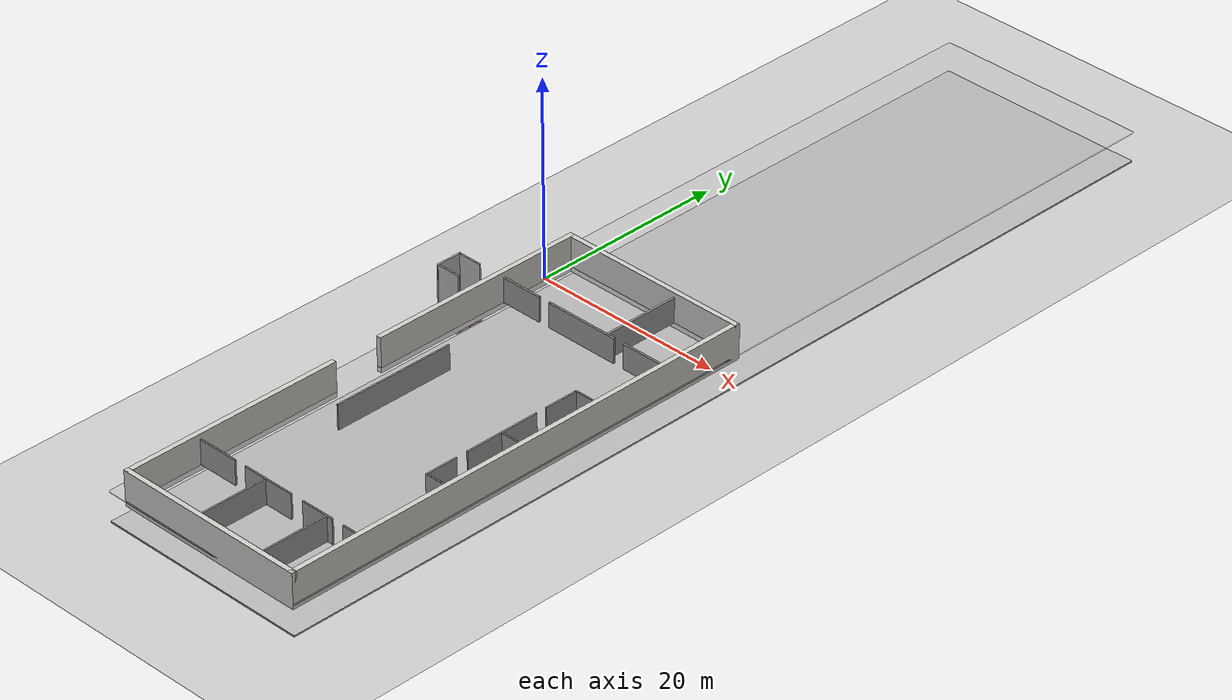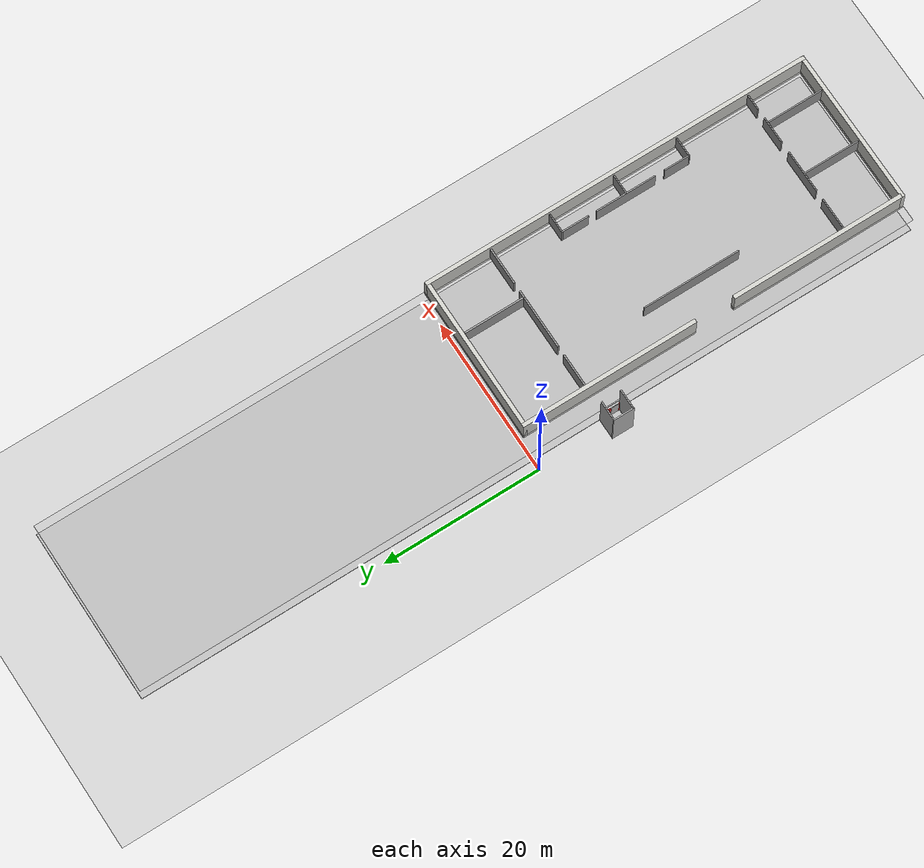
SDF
<sdf version="1.6">
 <world name="default">
  <model name="ground_plane">
   <static>1</static>
   <link name="link">
    <collision name="collision">
     <geometry><plane><normal>0 0 1</normal><size>100 100</size></plane></geometry>
     <surface><friction><ode><mu>100</mu><mu2>50</mu2></ode></friction></surface>
    </collision>
    <visual name="visual">
     <cast_shadows>0</cast_shadows>
     <geometry><plane><normal>0 0 1</normal><size>100 100</size></plane></geometry>
     <material>
      <script><uri>file://media/materials/scripts/gazebo.material</uri><name>Gazebo/Grey</name></script>
     </material>
    </visual>
   </link>
  </model>
  <model name="office_clone_clone">
   <link name="Wall_1">
    <pose>-24.75 -3e-06 0 0 0 -1.5708</pose>
    <inertial>
     <mass>1</mass>
     <inertia><ixx>1</ixx><ixy>0</ixy><ixz>0</ixz><iyy>1</iyy><iyz>0</iyz><izz>1</izz></inertia>
    </inertial>
    <visual name="Wall_1_Visual">
     <pose>0 0 1.25 0 -0 0</pose>
     <geometry><box><size>20 0.5 3.5</size></box></geometry>
     <material>
      <script><uri>file://media/materials/scripts/gazebo.material</uri><name>Gazebo/CeilingTiled</name></script>
      <ambient>1 1 1 1</ambient>
      <shader type="vertex"><normal_map>__default__</normal_map></shader>
      <diffuse>1 1 1 1</diffuse>
      <specular>0 0 0 1</specular>
      <emissive>0 0 0 1</emissive>
     </material>
     <meta><layer>0</layer></meta>
    </visual>
    <collision name="Wall_1_Collision">
     <pose>0 0 1.25 0 -0 0</pose>
     <geometry><box><size>20 0.5 3.5</size></box></geometry>
     <surface>
      <friction>
       <ode><mu>1</mu><mu2>1</mu2><fdir1>0 0 0</fdir1><slip1>0</slip1><slip2>0</slip2></ode>
       <torsional>
        <coefficient>1</coefficient>
        <patch_radius>0</patch_radius>
        <surface_radius>0</surface_radius>
        <use_patch_radius>1</use_patch_radius>
        <ode><slip>0</slip></ode>
       </torsional>
      </friction>
      <bounce><restitution_coefficient>0</restitution_coefficient><threshold>1e+06</threshold></bounce>
      <contact>
       <collide_without_contact>0</collide_without_contact>
       <collide_without_contact_bitmask>1</collide_without_contact_bitmask>
       <collide_bitmask>1</collide_bitmask>
       <ode>
        <soft_cfm>0</soft_cfm>
        <soft_erp>0.2</soft_erp>
        <kp>1e+13</kp>
        <kd>1</kd>
        <max_vel>0.01</max_vel>
        <min_depth>0</min_depth>
       </ode>
       <bullet>
        <split_impulse>1</split_impulse>
        <split_impulse_penetration_threshold>-0.01</split_impulse_penetration_threshold>
        <soft_cfm>0</soft_cfm>
        <soft_erp>0.2</soft_erp>
        <kp>1e+13</kp>
        <kd>1</kd>
       </bullet>
      </contact>
     </surface>
    </collision>
   </link>
   <link name="Wall_11">
    <pose>24.75 3e-06 0 0 0 -1.5708</pose>
    <inertial>
     <mass>1</mass>
     <inertia><ixx>1</ixx><ixy>0</ixy><ixz>0</ixz><iyy>1</iyy><iyz>0</iyz><izz>1</izz></inertia>
    </inertial>
    <visual name="Wall_11_Visual">
     <pose>0 0 1.25 0 -0 0</pose>
     <geometry><box><size>20 0.5 3.5</size></box></geometry>
     <material>
      <script><uri>file://media/materials/scripts/gazebo.material</uri><name>Gazebo/CeilingTiled</name></script>
      <ambient>1 1 1 1</ambient>
      <shader type="vertex"><normal_map>__default__</normal_map></shader>
      <diffuse>1 1 1 1</diffuse>
      <specular>0 0 0 1</specular>
      <emissive>0 0 0 1</emissive>
     </material>
     <meta><layer>0</layer></meta>
    </visual>
    <collision name="Wall_11_Collision">
     <pose>0 0 1.25 0 -0 0</pose>
     <geometry><box><size>20 0.5 3.5</size></box></geometry>
     <surface>
      <friction>
       <ode><mu>1</mu><mu2>1</mu2><fdir1>0 0 0</fdir1><slip1>0</slip1><slip2>0</slip2></ode>
       <torsional>
        <coefficient>1</coefficient>
        <patch_radius>0</patch_radius>
        <surface_radius>0</surface_radius>
        <use_patch_radius>1</use_patch_radius>
        <ode><slip>0</slip></ode>
       </torsional>
      </friction>
      <bounce><restitution_coefficient>0</restitution_coefficient><threshold>1e+06</threshold></bounce>
      <contact>
       <collide_without_contact>0</collide_without_contact>
       <collide_without_contact_bitmask>1</collide_without_contact_bitmask>
       <collide_bitmask>1</collide_bitmask>
       <ode>
        <soft_cfm>0</soft_cfm>
        <soft_erp>0.2</soft_erp>
        <kp>1e+13</kp>
        <kd>1</kd>
        <max_vel>0.01</max_vel>
        <min_depth>0</min_depth>
       </ode>
       <bullet>
        <split_impulse>1</split_impulse>
        <split_impulse_penetration_threshold>-0.01</split_impulse_penetration_threshold>
        <soft_cfm>0</soft_cfm>
        <soft_erp>0.2</soft_erp>
        <kp>1e+13</kp>
        <kd>1</kd>
       </bullet>
      </contact>
     </surface>
    </collision>
   </link>
   <link name="Wall_13">
    <pose>-16.658 7.127 0 0 0 -1.5708</pose>
    <visual name="Wall_13_Visual">
     <pose>0 0 1.25 0 -0 0</pose>
     <geometry><box><size>4.80017 0.2 2.5</size></box></geometry>
     <material>
      <script><uri>file://media/materials/scripts/gazebo.material</uri><name>Gazebo/Grey</name></script>
      <ambient>1 1 1 1</ambient>
     </material>
     <meta><layer>0</layer></meta>
    </visual>
    <collision name="Wall_13_Collision">
     <pose>0 0 1.25 0 -0 0</pose>
     <geometry><box><size>4.80017 0.2 2.5</size></box></geometry>
     <surface>
      <friction>
       <ode><mu>1</mu><mu2>1</mu2><fdir1>0 0 0</fdir1><slip1>0</slip1><slip2>0</slip2></ode>
       <torsional>
        <coefficient>1</coefficient>
        <patch_radius>0</patch_radius>
        <surface_radius>0</surface_radius>
        <use_patch_radius>1</use_patch_radius>
        <ode><slip>0</slip></ode>
       </torsional>
      </friction>
      <bounce><restitution_coefficient>0</restitution_coefficient><threshold>1e+06</threshold></bounce>
      <contact>
       <collide_without_contact>0</collide_without_contact>
       <collide_without_contact_bitmask>1</collide_without_contact_bitmask>
       <collide_bitmask>1</collide_bitmask>
       <ode>
        <soft_cfm>0</soft_cfm>
        <soft_erp>0.2</soft_erp>
        <kp>1e+13</kp>
        <kd>1</kd>
        <max_vel>0.01</max_vel>
        <min_depth>0</min_depth>
       </ode>
       <bullet>
        <split_impulse>1</split_impulse>
        <split_impulse_penetration_threshold>-0.01</split_impulse_penetration_threshold>
        <soft_cfm>0</soft_cfm>
        <soft_erp>0.2</soft_erp>
        <kp>1e+13</kp>
        <kd>1</kd>
       </bullet>
      </contact>
     </surface>
    </collision>
   </link>
   <link name="Wall_15">
    <pose>-16.658 -0.198 0 0 0 -1.5708</pose>
    <visual name="Wall_15_Visual">
     <pose>0 0 1.25 0 -0 0</pose>
     <geometry><box><size>7.75 0.2 2.5</size></box></geometry>
     <material>
      <script><uri>file://media/materials/scripts/gazebo.material</uri><name>Gazebo/Grey</name></script>
      <ambient>1 1 1 1</ambient>
     </material>
     <meta><layer>0</layer></meta>
    </visual>
    <collision name="Wall_15_Collision">
     <pose>0 0 1.25 0 -0 0</pose>
     <geometry><box><size>7.75 0.2 2.5</size></box></geometry>
     <surface>
      <friction>
       <ode><mu>1</mu><mu2>1</mu2><fdir1>0 0 0</fdir1><slip1>0</slip1><slip2>0</slip2></ode>
       <torsional>
        <coefficient>1</coefficient>
        <patch_radius>0</patch_radius>
        <surface_radius>0</surface_radius>
        <use_patch_radius>1</use_patch_radius>
        <ode><slip>0</slip></ode>
       </torsional>
      </friction>
      <bounce><restitution_coefficient>0</restitution_coefficient><threshold>1e+06</threshold></bounce>
      <contact>
       <collide_without_contact>0</collide_without_contact>
       <collide_without_contact_bitmask>1</collide_without_contact_bitmask>
       <collide_bitmask>1</collide_bitmask>
       <ode>
        <soft_cfm>0</soft_cfm>
        <soft_erp>0.2</soft_erp>
        <kp>1e+13</kp>
        <kd>1</kd>
        <max_vel>0.01</max_vel>
        <min_depth>0</min_depth>
       </ode>
       <bullet>
        <split_impulse>1</split_impulse>
        <split_impulse_penetration_threshold>-0.01</split_impulse_penetration_threshold>
        <soft_cfm>0</soft_cfm>
        <soft_erp>0.2</soft_erp>
        <kp>1e+13</kp>
        <kd>1</kd>
       </bullet>
      </contact>
     </surface>
    </collision>
   </link>
   <link name="Wall_17">
    <pose>-16.658 -7.423 0 0 0 -1.5708</pose>
    <visual name="Wall_17_Visual">
     <pose>0 0 1.25 0 -0 0</pose>
     <geometry><box><size>4.5 0.2 2.5</size></box></geometry>
     <material>
      <script><uri>file://media/materials/scripts/gazebo.material</uri><name>Gazebo/Grey</name></script>
      <ambient>1 1 1 1</ambient>
     </material>
     <meta><layer>0</layer></meta>
    </visual>
    <collision name="Wall_17_Collision">
     <pose>0 0 1.25 0 -0 0</pose>
     <geometry><box><size>4.5 0.2 2.5</size></box></geometry>
     <surface>
      <friction>
       <ode><mu>1</mu><mu2>1</mu2><fdir1>0 0 0</fdir1><slip1>0</slip1><slip2>0</slip2></ode>
       <torsional>
        <coefficient>1</coefficient>
        <patch_radius>0</patch_radius>
        <surface_radius>0</surface_radius>
        <use_patch_radius>1</use_patch_radius>
        <ode><slip>0</slip></ode>
       </torsional>
      </friction>
      <bounce><restitution_coefficient>0</restitution_coefficient><threshold>1e+06</threshold></bounce>
      <contact>
       <collide_without_contact>0</collide_without_contact>
       <collide_without_contact_bitmask>1</collide_without_contact_bitmask>
       <collide_bitmask>1</collide_bitmask>
       <ode>
        <soft_cfm>0</soft_cfm>
        <soft_erp>0.2</soft_erp>
        <kp>1e+13</kp>
        <kd>1</kd>
        <max_vel>0.01</max_vel>
        <min_depth>0</min_depth>
       </ode>
       <bullet>
        <split_impulse>1</split_impulse>
        <split_impulse_penetration_threshold>-0.01</split_impulse_penetration_threshold>
        <soft_cfm>0</soft_cfm>
        <soft_erp>0.2</soft_erp>
        <kp>1e+13</kp>
        <kd>1</kd>
       </bullet>
      </contact>
     </surface>
    </collision>
   </link>
   <link name="Wall_19">
    <pose>-20.703 2.792 0 0 -0 0</pose>
    <visual name="Wall_19_Visual">
     <pose>0 0 1.25 0 -0 0</pose>
     <geometry><box><size>8.04985 0.2 2.5</size></box></geometry>
     <material>
      <script><uri>file://media/materials/scripts/gazebo.material</uri><name>Gazebo/Grey</name></script>
      <ambient>1 1 1 1</ambient>
     </material>
     <meta><layer>0</layer></meta>
    </visual>
    <collision name="Wall_19_Collision">
     <pose>0 0 1.25 0 -0 0</pose>
     <geometry><box><size>8.04985 0.2 2.5</size></box></geometry>
     <surface>
      <friction>
       <ode><mu>1</mu><mu2>1</mu2><fdir1>0 0 0</fdir1><slip1>0</slip1><slip2>0</slip2></ode>
       <torsional>
        <coefficient>1</coefficient>
        <patch_radius>0</patch_radius>
        <surface_radius>0</surface_radius>
        <use_patch_radius>1</use_patch_radius>
        <ode><slip>0</slip></ode>
       </torsional>
      </friction>
      <bounce><restitution_coefficient>0</restitution_coefficient><threshold>1e+06</threshold></bounce>
      <contact>
       <collide_without_contact>0</collide_without_contact>
       <collide_without_contact_bitmask>1</collide_without_contact_bitmask>
       <collide_bitmask>1</collide_bitmask>
       <ode>
        <soft_cfm>0</soft_cfm>
        <soft_erp>0.2</soft_erp>
        <kp>1e+13</kp>
        <kd>1</kd>
        <max_vel>0.01</max_vel>
        <min_depth>0</min_depth>
       </ode>
       <bullet>
        <split_impulse>1</split_impulse>
        <split_impulse_penetration_threshold>-0.01</split_impulse_penetration_threshold>
        <soft_cfm>0</soft_cfm>
        <soft_erp>0.2</soft_erp>
        <kp>1e+13</kp>
        <kd>1</kd>
       </bullet>
      </contact>
     </surface>
    </collision>
   </link>
   <link name="Wall_21">
    <pose>17.2839 8.57905 0 0 0 -1.57072</pose>
    <visual name="Wall_21_Visual">
     <pose>0 0 1.25 0 -0 0</pose>
     <geometry><box><size>2.25 0.15 2.5</size></box></geometry>
     <material>
      <script><uri>file://media/materials/scripts/gazebo.material</uri><name>Gazebo/Grey</name></script>
      <ambient>1 1 1 1</ambient>
     </material>
     <meta><layer>0</layer></meta>
    </visual>
    <collision name="Wall_21_Collision">
     <pose>0 0 1.25 0 -0 0</pose>
     <geometry><box><size>2.25 0.15 2.5</size></box></geometry>
     <surface>
      <friction>
       <ode><mu>1</mu><mu2>1</mu2><fdir1>0 0 0</fdir1><slip1>0</slip1><slip2>0</slip2></ode>
       <torsional>
        <coefficient>1</coefficient>
        <patch_radius>0</patch_radius>
        <surface_radius>0</surface_radius>
        <use_patch_radius>1</use_patch_radius>
        <ode><slip>0</slip></ode>
       </torsional>
      </friction>
      <bounce><restitution_coefficient>0</restitution_coefficient><threshold>1e+06</threshold></bounce>
      <contact>
       <collide_without_contact>0</collide_without_contact>
       <collide_without_contact_bitmask>1</collide_without_contact_bitmask>
       <collide_bitmask>1</collide_bitmask>
       <ode>
        <soft_cfm>0</soft_cfm>
        <soft_erp>0.2</soft_erp>
        <kp>1e+13</kp>
        <kd>1</kd>
        <max_vel>0.01</max_vel>
        <min_depth>0</min_depth>
       </ode>
       <bullet>
        <split_impulse>1</split_impulse>
        <split_impulse_penetration_threshold>-0.01</split_impulse_penetration_threshold>
        <soft_cfm>0</soft_cfm>
        <soft_erp>0.2</soft_erp>
        <kp>1e+13</kp>
        <kd>1</kd>
       </bullet>
      </contact>
     </surface>
    </collision>
   </link>
   <link name="Wall_23">
    <pose>17.2838 4.5041 0 0 0 -1.5708</pose>
    <visual name="Wall_23_Visual">
     <pose>0 0 1.25 0 -0 0</pose>
     <geometry><box><size>3.5 0.15 2.5</size></box></geometry>
     <material>
      <script><uri>file://media/materials/scripts/gazebo.material</uri><name>Gazebo/Grey</name></script>
      <ambient>1 1 1 1</ambient>
     </material>
     <meta><layer>0</layer></meta>
    </visual>
    <collision name="Wall_23_Collision">
     <pose>0 0 1.25 0 -0 0</pose>
     <geometry><box><size>3.5 0.15 2.5</size></box></geometry>
     <surface>
      <friction>
       <ode><mu>1</mu><mu2>1</mu2><fdir1>0 0 0</fdir1><slip1>0</slip1><slip2>0</slip2></ode>
       <torsional>
        <coefficient>1</coefficient>
        <patch_radius>0</patch_radius>
        <surface_radius>0</surface_radius>
        <use_patch_radius>1</use_patch_radius>
        <ode><slip>0</slip></ode>
       </torsional>
      </friction>
      <bounce><restitution_coefficient>0</restitution_coefficient><threshold>1e+06</threshold></bounce>
      <contact>
       <collide_without_contact>0</collide_without_contact>
       <collide_without_contact_bitmask>1</collide_without_contact_bitmask>
       <collide_bitmask>1</collide_bitmask>
       <ode>
        <soft_cfm>0</soft_cfm>
        <soft_erp>0.2</soft_erp>
        <kp>1e+13</kp>
        <kd>1</kd>
        <max_vel>0.01</max_vel>
        <min_depth>0</min_depth>
       </ode>
       <bullet>
        <split_impulse>1</split_impulse>
        <split_impulse_penetration_threshold>-0.01</split_impulse_penetration_threshold>
        <soft_cfm>0</soft_cfm>
        <soft_erp>0.2</soft_erp>
        <kp>1e+13</kp>
        <kd>1</kd>
       </bullet>
      </contact>
     </surface>
    </collision>
   </link>
   <link name="Wall_25">
    <pose>17.2838 -1.3459 0 0 0 -1.5708</pose>
    <visual name="Wall_25_Visual">
     <pose>0 0 1.25 0 -0 0</pose>
     <geometry><box><size>5.5 0.15 2.5</size></box></geometry>
     <material>
      <script><uri>file://media/materials/scripts/gazebo.material</uri><name>Gazebo/Grey</name></script>
      <ambient>1 1 1 1</ambient>
     </material>
     <meta><layer>0</layer></meta>
    </visual>
    <collision name="Wall_25_Collision">
     <pose>0 0 1.25 0 -0 0</pose>
     <geometry><box><size>5.5 0.15 2.5</size></box></geometry>
     <surface>
      <friction>
       <ode><mu>1</mu><mu2>1</mu2><fdir1>0 0 0</fdir1><slip1>0</slip1><slip2>0</slip2></ode>
       <torsional>
        <coefficient>1</coefficient>
        <patch_radius>0</patch_radius>
        <surface_radius>0</surface_radius>
        <use_patch_radius>1</use_patch_radius>
        <ode><slip>0</slip></ode>
       </torsional>
      </friction>
      <bounce><restitution_coefficient>0</restitution_coefficient><threshold>1e+06</threshold></bounce>
      <contact>
       <collide_without_contact>0</collide_without_contact>
       <collide_without_contact_bitmask>1</collide_without_contact_bitmask>
       <collide_bitmask>1</collide_bitmask>
       <ode>
        <soft_cfm>0</soft_cfm>
        <soft_erp>0.2</soft_erp>
        <kp>1e+13</kp>
        <kd>1</kd>
        <max_vel>0.01</max_vel>
        <min_depth>0</min_depth>
       </ode>
       <bullet>
        <split_impulse>1</split_impulse>
        <split_impulse_penetration_threshold>-0.01</split_impulse_penetration_threshold>
        <soft_cfm>0</soft_cfm>
        <soft_erp>0.2</soft_erp>
        <kp>1e+13</kp>
        <kd>1</kd>
       </bullet>
      </contact>
     </surface>
    </collision>
   </link>
   <link name="Wall_27">
    <pose>17.2838 -7.4709 0 0 0 -1.5708</pose>
    <visual name="Wall_27_Visual">
     <pose>0 0 1.25 0 -0 0</pose>
     <geometry><box><size>4.35 0.15 2.5</size></box></geometry>
     <material>
      <script><uri>file://media/materials/scripts/gazebo.material</uri><name>Gazebo/Grey</name></script>
      <ambient>1 1 1 1</ambient>
     </material>
     <meta><layer>0</layer></meta>
    </visual>
    <collision name="Wall_27_Collision">
     <pose>0 0 1.25 0 -0 0</pose>
     <geometry><box><size>4.35 0.15 2.5</size></box></geometry>
     <surface>
      <friction>
       <ode><mu>1</mu><mu2>1</mu2><fdir1>0 0 0</fdir1><slip1>0</slip1><slip2>0</slip2></ode>
       <torsional>
        <coefficient>1</coefficient>
        <patch_radius>0</patch_radius>
        <surface_radius>0</surface_radius>
        <use_patch_radius>1</use_patch_radius>
        <ode><slip>0</slip></ode>
       </torsional>
      </friction>
      <bounce><restitution_coefficient>0</restitution_coefficient><threshold>1e+06</threshold></bounce>
      <contact>
       <collide_without_contact>0</collide_without_contact>
       <collide_without_contact_bitmask>1</collide_without_contact_bitmask>
       <collide_bitmask>1</collide_bitmask>
       <ode>
        <soft_cfm>0</soft_cfm>
        <soft_erp>0.2</soft_erp>
        <kp>1e+13</kp>
        <kd>1</kd>
        <max_vel>0.01</max_vel>
        <min_depth>0</min_depth>
       </ode>
       <bullet>
        <split_impulse>1</split_impulse>
        <split_impulse_penetration_threshold>-0.01</split_impulse_penetration_threshold>
        <soft_cfm>0</soft_cfm>
        <soft_erp>0.2</soft_erp>
        <kp>1e+13</kp>
        <kd>1</kd>
       </bullet>
      </contact>
     </surface>
    </collision>
   </link>
   <link name="Wall_29">
    <pose>20.9993 5.58355 0 0 -0 0</pose>
    <visual name="Wall_29_Visual">
     <pose>0 0 1.25 0 -0 0</pose>
     <geometry><box><size>7.5 0.15 2.5</size></box></geometry>
     <material>
      <script><uri>file://media/materials/scripts/gazebo.material</uri><name>Gazebo/Grey</name></script>
      <ambient>1 1 1 1</ambient>
     </material>
     <meta><layer>0</layer></meta>
    </visual>
    <collision name="Wall_29_Collision">
     <pose>0 0 1.25 0 -0 0</pose>
     <geometry><box><size>7.5 0.15 2.5</size></box></geometry>
     <surface>
      <friction>
       <ode><mu>1</mu><mu2>1</mu2><fdir1>0 0 0</fdir1><slip1>0</slip1><slip2>0</slip2></ode>
       <torsional>
        <coefficient>1</coefficient>
        <patch_radius>0</patch_radius>
        <surface_radius>0</surface_radius>
        <use_patch_radius>1</use_patch_radius>
        <ode><slip>0</slip></ode>
       </torsional>
      </friction>
      <bounce><restitution_coefficient>0</restitution_coefficient><threshold>1e+06</threshold></bounce>
      <contact>
       <collide_without_contact>0</collide_without_contact>
       <collide_without_contact_bitmask>1</collide_without_contact_bitmask>
       <collide_bitmask>1</collide_bitmask>
       <ode>
        <soft_cfm>0</soft_cfm>
        <soft_erp>0.2</soft_erp>
        <kp>1e+13</kp>
        <kd>1</kd>
        <max_vel>0.01</max_vel>
        <min_depth>0</min_depth>
       </ode>
       <bullet>
        <split_impulse>1</split_impulse>
        <split_impulse_penetration_threshold>-0.01</split_impulse_penetration_threshold>
        <soft_cfm>0</soft_cfm>
        <soft_erp>0.2</soft_erp>
        <kp>1e+13</kp>
        <kd>1</kd>
       </bullet>
      </contact>
     </surface>
    </collision>
   </link>
   <link name="Wall_3">
    <pose>-1e-06 9.75 0 0 -0 0</pose>
    <inertial>
     <mass>1</mass>
     <inertia><ixx>1</ixx><ixy>0</ixy><ixz>0</ixz><iyy>1</iyy><iyz>0</iyz><izz>1</izz></inertia>
    </inertial>
    <visual name="Wall_3_Visual">
     <pose>0 0 1.25 0 -0 0</pose>
     <geometry><box><size>50 0.5 3.5</size></box></geometry>
     <material>
      <script><uri>file://media/materials/scripts/gazebo.material</uri><name>Gazebo/CeilingTiled</name></script>
      <ambient>1 1 1 1</ambient>
      <shader type="vertex"><normal_map>__default__</normal_map></shader>
      <diffuse>1 1 1 1</diffuse>
      <specular>0 0 0 1</specular>
      <emissive>0 0 0 1</emissive>
     </material>
     <meta><layer>0</layer></meta>
    </visual>
    <collision name="Wall_3_Collision">
     <pose>0 0 1.25 0 -0 0</pose>
     <geometry><box><size>50 0.5 3.5</size></box></geometry>
     <surface>
      <friction>
       <ode><mu>1</mu><mu2>1</mu2><fdir1>0 0 0</fdir1><slip1>0</slip1><slip2>0</slip2></ode>
       <torsional>
        <coefficient>1</coefficient>
        <patch_radius>0</patch_radius>
        <surface_radius>0</surface_radius>
        <use_patch_radius>1</use_patch_radius>
        <ode><slip>0</slip></ode>
       </torsional>
      </friction>
      <bounce><restitution_coefficient>0</restitution_coefficient><threshold>1e+06</threshold></bounce>
      <contact>
       <collide_without_contact>0</collide_without_contact>
       <collide_without_contact_bitmask>1</collide_without_contact_bitmask>
       <collide_bitmask>1</collide_bitmask>
       <ode>
        <soft_cfm>0</soft_cfm>
        <soft_erp>0.2</soft_erp>
        <kp>1e+13</kp>
        <kd>1</kd>
        <max_vel>0.01</max_vel>
        <min_depth>0</min_depth>
       </ode>
       <bullet>
        <split_impulse>1</split_impulse>
        <split_impulse_penetration_threshold>-0.01</split_impulse_penetration_threshold>
        <soft_cfm>0</soft_cfm>
        <soft_erp>0.2</soft_erp>
        <kp>1e+13</kp>
        <kd>1</kd>
       </bullet>
      </contact>
     </surface>
    </collision>
   </link>
   <link name="Wall_31">
    <pose>20.9993 -1.658 0 0 -0 0</pose>
    <visual name="Wall_31_Visual">
     <pose>0 0 1.25 0 -0 0</pose>
     <geometry><box><size>7.5 0.15 2.5</size></box></geometry>
     <material>
      <script><uri>file://media/materials/scripts/gazebo.material</uri><name>Gazebo/Grey</name></script>
      <ambient>1 1 1 1</ambient>
     </material>
     <meta><layer>0</layer></meta>
    </visual>
    <collision name="Wall_31_Collision">
     <pose>0 0 1.25 0 -0 0</pose>
     <geometry><box><size>7.5 0.15 2.5</size></box></geometry>
     <surface>
      <friction>
       <ode><mu>1</mu><mu2>1</mu2><fdir1>0 0 0</fdir1><slip1>0</slip1><slip2>0</slip2></ode>
       <torsional>
        <coefficient>1</coefficient>
        <patch_radius>0</patch_radius>
        <surface_radius>0</surface_radius>
        <use_patch_radius>1</use_patch_radius>
        <ode><slip>0</slip></ode>
       </torsional>
      </friction>
      <bounce><restitution_coefficient>0</restitution_coefficient><threshold>1e+06</threshold></bounce>
      <contact>
       <collide_without_contact>0</collide_without_contact>
       <collide_without_contact_bitmask>1</collide_without_contact_bitmask>
       <collide_bitmask>1</collide_bitmask>
       <ode>
        <soft_cfm>0</soft_cfm>
        <soft_erp>0.2</soft_erp>
        <kp>1e+13</kp>
        <kd>1</kd>
        <max_vel>0.01</max_vel>
        <min_depth>0</min_depth>
       </ode>
       <bullet>
        <split_impulse>1</split_impulse>
        <split_impulse_penetration_threshold>-0.01</split_impulse_penetration_threshold>
        <soft_cfm>0</soft_cfm>
        <soft_erp>0.2</soft_erp>
        <kp>1e+13</kp>
        <kd>1</kd>
       </bullet>
      </contact>
     </surface>
    </collision>
   </link>
   <link name="Wall_34">
    <pose>-8.97184 8.28865 0 0 0 -1.5708</pose>
    <visual name="Wall_34_Visual">
     <pose>0 0 1.25 0 -0 0</pose>
     <geometry><box><size>2.75032 0.15 2.5</size></box></geometry>
     <material>
      <script><uri>file://media/materials/scripts/gazebo.material</uri><name>Gazebo/Grey</name></script>
      <ambient>1 1 1 1</ambient>
     </material>
     <meta><layer>0</layer></meta>
    </visual>
    <collision name="Wall_34_Collision">
     <pose>0 0 1.25 0 -0 0</pose>
     <geometry><box><size>2.75032 0.15 2.5</size></box></geometry>
     <surface>
      <friction>
       <ode><mu>1</mu><mu2>1</mu2><fdir1>0 0 0</fdir1><slip1>0</slip1><slip2>0</slip2></ode>
       <torsional>
        <coefficient>1</coefficient>
        <patch_radius>0</patch_radius>
        <surface_radius>0</surface_radius>
        <use_patch_radius>1</use_patch_radius>
        <ode><slip>0</slip></ode>
       </torsional>
      </friction>
      <bounce><restitution_coefficient>0</restitution_coefficient><threshold>1e+06</threshold></bounce>
      <contact>
       <collide_without_contact>0</collide_without_contact>
       <collide_without_contact_bitmask>1</collide_without_contact_bitmask>
       <collide_bitmask>1</collide_bitmask>
       <ode>
        <soft_cfm>0</soft_cfm>
        <soft_erp>0.2</soft_erp>
        <kp>1e+13</kp>
        <kd>1</kd>
        <max_vel>0.01</max_vel>
        <min_depth>0</min_depth>
       </ode>
       <bullet>
        <split_impulse>1</split_impulse>
        <split_impulse_penetration_threshold>-0.01</split_impulse_penetration_threshold>
        <soft_cfm>0</soft_cfm>
        <soft_erp>0.2</soft_erp>
        <kp>1e+13</kp>
        <kd>1</kd>
       </bullet>
      </contact>
     </surface>
    </collision>
   </link>
   <link name="Wall_35">
    <pose>-7.25638 6.98865 0 0 -0 0</pose>
    <visual name="Wall_35_Visual">
     <pose>0 0 1.25 0 -0 0</pose>
     <geometry><box><size>3.5 0.15 2.5</size></box></geometry>
     <material>
      <script><uri>file://media/materials/scripts/gazebo.material</uri><name>Gazebo/Grey</name></script>
      <ambient>1 1 1 1</ambient>
     </material>
     <meta><layer>0</layer></meta>
    </visual>
    <collision name="Wall_35_Collision">
     <pose>0 0 1.25 0 -0 0</pose>
     <geometry><box><size>3.5 0.15 2.5</size></box></geometry>
     <surface>
      <friction>
       <ode><mu>1</mu><mu2>1</mu2><fdir1>0 0 0</fdir1><slip1>0</slip1><slip2>0</slip2></ode>
       <torsional>
        <coefficient>1</coefficient>
        <patch_radius>0</patch_radius>
        <surface_radius>0</surface_radius>
        <use_patch_radius>1</use_patch_radius>
        <ode><slip>0</slip></ode>
       </torsional>
      </friction>
      <bounce><restitution_coefficient>0</restitution_coefficient><threshold>1e+06</threshold></bounce>
      <contact>
       <collide_without_contact>0</collide_without_contact>
       <collide_without_contact_bitmask>1</collide_without_contact_bitmask>
       <collide_bitmask>1</collide_bitmask>
       <ode>
        <soft_cfm>0</soft_cfm>
        <soft_erp>0.2</soft_erp>
        <kp>1e+13</kp>
        <kd>1</kd>
        <max_vel>0.01</max_vel>
        <min_depth>0</min_depth>
       </ode>
       <bullet>
        <split_impulse>1</split_impulse>
        <split_impulse_penetration_threshold>-0.01</split_impulse_penetration_threshold>
        <soft_cfm>0</soft_cfm>
        <soft_erp>0.2</soft_erp>
        <kp>1e+13</kp>
        <kd>1</kd>
       </bullet>
      </contact>
     </surface>
    </collision>
   </link>
   <link name="Wall_37">
    <pose>-0.572 6.989 0 0 -0 0</pose>
    <visual name="Wall_37_Visual">
     <pose>0 0 1.25 0 -0 0</pose>
     <geometry><box><size>7.75 0.15 2.5</size></box></geometry>
     <material>
      <script><uri>file://media/materials/scripts/gazebo.material</uri><name>Gazebo/Grey</name></script>
      <ambient>1 1 1 1</ambient>
     </material>
     <meta><layer>0</layer></meta>
    </visual>
    <collision name="Wall_37_Collision">
     <pose>0 0 1.25 0 -0 0</pose>
     <geometry><box><size>7.75 0.15 2.5</size></box></geometry>
     <surface>
      <friction>
       <ode><mu>1</mu><mu2>1</mu2><fdir1>0 0 0</fdir1><slip1>0</slip1><slip2>0</slip2></ode>
       <torsional>
        <coefficient>1</coefficient>
        <patch_radius>0</patch_radius>
        <surface_radius>0</surface_radius>
        <use_patch_radius>1</use_patch_radius>
        <ode><slip>0</slip></ode>
       </torsional>
      </friction>
      <bounce><restitution_coefficient>0</restitution_coefficient><threshold>1e+06</threshold></bounce>
      <contact>
       <collide_without_contact>0</collide_without_contact>
       <collide_without_contact_bitmask>1</collide_without_contact_bitmask>
       <collide_bitmask>1</collide_bitmask>
       <ode>
        <soft_cfm>0</soft_cfm>
        <soft_erp>0.2</soft_erp>
        <kp>1e+13</kp>
        <kd>1</kd>
        <max_vel>0.01</max_vel>
        <min_depth>0</min_depth>
       </ode>
       <bullet>
        <split_impulse>1</split_impulse>
        <split_impulse_penetration_threshold>-0.01</split_impulse_penetration_threshold>
        <soft_cfm>0</soft_cfm>
        <soft_erp>0.2</soft_erp>
        <kp>1e+13</kp>
        <kd>1</kd>
       </bullet>
      </contact>
     </surface>
    </collision>
   </link>
   <link name="Wall_39">
    <pose>6.17808 6.98882 0 0 0 -0.00011</pose>
    <visual name="Wall_39_Visual">
     <pose>0 0 1.25 0 -0 0</pose>
     <geometry><box><size>3.35 0.15 2.5</size></box></geometry>
     <material>
      <script><uri>file://media/materials/scripts/gazebo.material</uri><name>Gazebo/Grey</name></script>
      <ambient>1 1 1 1</ambient>
     </material>
     <meta><layer>0</layer></meta>
    </visual>
    <collision name="Wall_39_Collision">
     <pose>0 0 1.25 0 -0 0</pose>
     <geometry><box><size>3.35 0.15 2.5</size></box></geometry>
     <surface>
      <friction>
       <ode><mu>1</mu><mu2>1</mu2><fdir1>0 0 0</fdir1><slip1>0</slip1><slip2>0</slip2></ode>
       <torsional>
        <coefficient>1</coefficient>
        <patch_radius>0</patch_radius>
        <surface_radius>0</surface_radius>
        <use_patch_radius>1</use_patch_radius>
        <ode><slip>0</slip></ode>
       </torsional>
      </friction>
      <bounce><restitution_coefficient>0</restitution_coefficient><threshold>1e+06</threshold></bounce>
      <contact>
       <collide_without_contact>0</collide_without_contact>
       <collide_without_contact_bitmask>1</collide_without_contact_bitmask>
       <collide_bitmask>1</collide_bitmask>
       <ode>
        <soft_cfm>0</soft_cfm>
        <soft_erp>0.2</soft_erp>
        <kp>1e+13</kp>
        <kd>1</kd>
        <max_vel>0.01</max_vel>
        <min_depth>0</min_depth>
       </ode>
       <bullet>
        <split_impulse>1</split_impulse>
        <split_impulse_penetration_threshold>-0.01</split_impulse_penetration_threshold>
        <soft_cfm>0</soft_cfm>
        <soft_erp>0.2</soft_erp>
        <kp>1e+13</kp>
        <kd>1</kd>
       </bullet>
      </contact>
     </surface>
    </collision>
   </link>
   <link name="Wall_40">
    <pose>7.77816 8.28865 0 0 -0 1.5708</pose>
    <visual name="Wall_40_Visual">
     <pose>0 0 1.25 0 -0 0</pose>
     <geometry><box><size>2.75 0.15 2.5</size></box></geometry>
     <material>
      <script><uri>file://media/materials/scripts/gazebo.material</uri><name>Gazebo/Grey</name></script>
      <ambient>1 1 1 1</ambient>
     </material>
     <meta><layer>0</layer></meta>
    </visual>
    <collision name="Wall_40_Collision">
     <pose>0 0 1.25 0 -0 0</pose>
     <geometry><box><size>2.75 0.15 2.5</size></box></geometry>
     <surface>
      <friction>
       <ode><mu>1</mu><mu2>1</mu2><fdir1>0 0 0</fdir1><slip1>0</slip1><slip2>0</slip2></ode>
       <torsional>
        <coefficient>1</coefficient>
        <patch_radius>0</patch_radius>
        <surface_radius>0</surface_radius>
        <use_patch_radius>1</use_patch_radius>
        <ode><slip>0</slip></ode>
       </torsional>
      </friction>
      <bounce><restitution_coefficient>0</restitution_coefficient><threshold>1e+06</threshold></bounce>
      <contact>
       <collide_without_contact>0</collide_without_contact>
       <collide_without_contact_bitmask>1</collide_without_contact_bitmask>
       <collide_bitmask>1</collide_bitmask>
       <ode>
        <soft_cfm>0</soft_cfm>
        <soft_erp>0.2</soft_erp>
        <kp>1e+13</kp>
        <kd>1</kd>
        <max_vel>0.01</max_vel>
        <min_depth>0</min_depth>
       </ode>
       <bullet>
        <split_impulse>1</split_impulse>
        <split_impulse_penetration_threshold>-0.01</split_impulse_penetration_threshold>
        <soft_cfm>0</soft_cfm>
        <soft_erp>0.2</soft_erp>
        <kp>1e+13</kp>
        <kd>1</kd>
       </bullet>
      </contact>
     </surface>
    </collision>
   </link>
   <link name="Wall_42">
    <pose>-0.516625 8.36956 0 0 0 -1.5708</pose>
    <visual name="Wall_42_Visual">
     <pose>0 0 1.25 0 -0 0</pose>
     <geometry><box><size>2.75 0.15 2.5</size></box></geometry>
     <material>
      <script><uri>file://media/materials/scripts/gazebo.material</uri><name>Gazebo/Grey</name></script>
      <ambient>1 1 1 1</ambient>
     </material>
     <meta><layer>0</layer></meta>
    </visual>
    <collision name="Wall_42_Collision">
     <pose>0 0 1.25 0 -0 0</pose>
     <geometry><box><size>2.75 0.15 2.5</size></box></geometry>
     <surface>
      <friction>
       <ode><mu>1</mu><mu2>1</mu2><fdir1>0 0 0</fdir1><slip1>0</slip1><slip2>0</slip2></ode>
       <torsional>
        <coefficient>1</coefficient>
        <patch_radius>0</patch_radius>
        <surface_radius>0</surface_radius>
        <use_patch_radius>1</use_patch_radius>
        <ode><slip>0</slip></ode>
       </torsional>
      </friction>
      <bounce><restitution_coefficient>0</restitution_coefficient><threshold>1e+06</threshold></bounce>
      <contact>
       <collide_without_contact>0</collide_without_contact>
       <collide_without_contact_bitmask>1</collide_without_contact_bitmask>
       <collide_bitmask>1</collide_bitmask>
       <ode>
        <soft_cfm>0</soft_cfm>
        <soft_erp>0.2</soft_erp>
        <kp>1e+13</kp>
        <kd>1</kd>
        <max_vel>0.01</max_vel>
        <min_depth>0</min_depth>
       </ode>
       <bullet>
        <split_impulse>1</split_impulse>
        <split_impulse_penetration_threshold>-0.01</split_impulse_penetration_threshold>
        <soft_cfm>0</soft_cfm>
        <soft_erp>0.2</soft_erp>
        <kp>1e+13</kp>
        <kd>1</kd>
       </bullet>
      </contact>
     </surface>
    </collision>
   </link>
   <link name="Wall_44">
    <pose>-0.086317 -5.33946 0 0 -0 0</pose>
    <visual name="Wall_44_Visual">
     <pose>0 0 1.25 0 -0 0</pose>
     <geometry><box><size>12.5 0.15 2.5</size></box></geometry>
     <material>
      <script><uri>file://media/materials/scripts/gazebo.material</uri><name>Gazebo/Grey</name></script>
      <ambient>1 1 1 1</ambient>
     </material>
     <meta><layer>0</layer></meta>
    </visual>
    <collision name="Wall_44_Collision">
     <pose>0 0 1.25 0 -0 0</pose>
     <geometry><box><size>12.5 0.15 2.5</size></box></geometry>
     <surface>
      <friction>
       <ode><mu>1</mu><mu2>1</mu2><fdir1>0 0 0</fdir1><slip1>0</slip1><slip2>0</slip2></ode>
       <torsional>
        <coefficient>1</coefficient>
        <patch_radius>0</patch_radius>
        <surface_radius>0</surface_radius>
        <use_patch_radius>1</use_patch_radius>
        <ode><slip>0</slip></ode>
       </torsional>
      </friction>
      <bounce><restitution_coefficient>0</restitution_coefficient><threshold>1e+06</threshold></bounce>
      <contact>
       <collide_without_contact>0</collide_without_contact>
       <collide_without_contact_bitmask>1</collide_without_contact_bitmask>
       <collide_bitmask>1</collide_bitmask>
       <ode>
        <soft_cfm>0</soft_cfm>
        <soft_erp>0.2</soft_erp>
        <kp>1e+13</kp>
        <kd>1</kd>
        <max_vel>0.01</max_vel>
        <min_depth>0</min_depth>
       </ode>
       <bullet>
        <split_impulse>1</split_impulse>
        <split_impulse_penetration_threshold>-0.01</split_impulse_penetration_threshold>
        <soft_cfm>0</soft_cfm>
        <soft_erp>0.2</soft_erp>
        <kp>1e+13</kp>
        <kd>1</kd>
       </bullet>
      </contact>
     </surface>
    </collision>
   </link>
   <link name="Wall_7">
    <pose>-13.75 -9.75 0 0 -0 0</pose>
    <inertial>
     <mass>1</mass>
     <inertia><ixx>1</ixx><ixy>0</ixy><ixz>0</ixz><iyy>1</iyy><iyz>0</iyz><izz>1</izz></inertia>
    </inertial>
    <visual name="Wall_7_Visual">
     <pose>0 0 1.25 0 -0 0</pose>
     <geometry><box><size>22.5 0.5 3.5</size></box></geometry>
     <material>
      <script><uri>file://media/materials/scripts/gazebo.material</uri><name>Gazebo/CeilingTiled</name></script>
      <ambient>1 1 1 1</ambient>
      <shader type="vertex"><normal_map>__default__</normal_map></shader>
      <diffuse>1 1 1 1</diffuse>
      <specular>0 0 0 1</specular>
      <emissive>0 0 0 1</emissive>
     </material>
     <meta><layer>0</layer></meta>
    </visual>
    <collision name="Wall_7_Collision">
     <pose>0 0 1.25 0 -0 0</pose>
     <geometry><box><size>22.5 0.5 3.5</size></box></geometry>
     <surface>
      <friction>
       <ode><mu>1</mu><mu2>1</mu2><fdir1>0 0 0</fdir1><slip1>0</slip1><slip2>0</slip2></ode>
       <torsional>
        <coefficient>1</coefficient>
        <patch_radius>0</patch_radius>
        <surface_radius>0</surface_radius>
        <use_patch_radius>1</use_patch_radius>
        <ode><slip>0</slip></ode>
       </torsional>
      </friction>
      <bounce><restitution_coefficient>0</restitution_coefficient><threshold>1e+06</threshold></bounce>
      <contact>
       <collide_without_contact>0</collide_without_contact>
       <collide_without_contact_bitmask>1</collide_without_contact_bitmask>
       <collide_bitmask>1</collide_bitmask>
       <ode>
        <soft_cfm>0</soft_cfm>
        <soft_erp>0.2</soft_erp>
        <kp>1e+13</kp>
        <kd>1</kd>
        <max_vel>0.01</max_vel>
        <min_depth>0</min_depth>
       </ode>
       <bullet>
        <split_impulse>1</split_impulse>
        <split_impulse_penetration_threshold>-0.01</split_impulse_penetration_threshold>
        <soft_cfm>0</soft_cfm>
        <soft_erp>0.2</soft_erp>
        <kp>1e+13</kp>
        <kd>1</kd>
       </bullet>
      </contact>
     </surface>
    </collision>
   </link>
   <link name="Wall_9">
    <pose>13.7296 -9.74954 0 0 -0 0</pose>
    <inertial>
     <mass>1</mass>
     <inertia><ixx>1</ixx><ixy>0</ixy><ixz>0</ixz><iyy>1</iyy><iyz>0</iyz><izz>1</izz></inertia>
    </inertial>
    <visual name="Wall_9_Visual">
     <pose>0 0 1.25 0 -0 0</pose>
     <geometry><box><size>22.5 0.5 3.5</size></box></geometry>
     <material>
      <script><uri>file://media/materials/scripts/gazebo.material</uri><name>Gazebo/CeilingTiled</name></script>
      <ambient>1 1 1 1</ambient>
      <shader type="vertex"><normal_map>__default__</normal_map></shader>
      <diffuse>1 1 1 1</diffuse>
      <specular>0 0 0 1</specular>
      <emissive>0 0 0 1</emissive>
     </material>
     <meta><layer>0</layer></meta>
    </visual>
    <collision name="Wall_9_Collision">
     <pose>0 0 1.25 0 -0 0</pose>
     <geometry><box><size>22.5 0.5 3.5</size></box></geometry>
     <surface>
      <friction>
       <ode><mu>1</mu><mu2>1</mu2><fdir1>0 0 0</fdir1><slip1>0</slip1><slip2>0</slip2></ode>
       <torsional>
        <coefficient>1</coefficient>
        <patch_radius>0</patch_radius>
        <surface_radius>0</surface_radius>
        <use_patch_radius>1</use_patch_radius>
        <ode><slip>0</slip></ode>
       </torsional>
      </friction>
      <bounce><restitution_coefficient>0</restitution_coefficient><threshold>1e+06</threshold></bounce>
      <contact>
       <collide_without_contact>0</collide_without_contact>
       <collide_without_contact_bitmask>1</collide_without_contact_bitmask>
       <collide_bitmask>1</collide_bitmask>
       <ode>
        <soft_cfm>0</soft_cfm>
        <soft_erp>0.2</soft_erp>
        <kp>1e+13</kp>
        <kd>1</kd>
        <max_vel>0.01</max_vel>
        <min_depth>0</min_depth>
       </ode>
       <bullet>
        <split_impulse>1</split_impulse>
        <split_impulse_penetration_threshold>-0.01</split_impulse_penetration_threshold>
        <soft_cfm>0</soft_cfm>
        <soft_erp>0.2</soft_erp>
        <kp>1e+13</kp>
        <kd>1</kd>
       </bullet>
      </contact>
     </surface>
    </collision>
   </link>
   <static>1</static>
   <pose>13.2499 -25 3.15 0 0 -1.5708</pose>
  </model>
  <model name="floor1">
   <link name="link">
    <pose>20 0 0 0 -0 0</pose>
    <inertial>
     <mass>1</mass>
     <inertia><ixx>1</ixx><ixy>0</ixy><ixz>0</ixz><iyy>1</iyy><iyz>0</iyz><izz>1</izz></inertia>
    </inertial>
    <visual name="floor_visual">
     <geometry><box><size>22 100 0.15</size></box></geometry>
     <transparency>0.7</transparency>
    </visual>
    <collision name="floor_collision">
     <geometry><box><size>22 100 0.15</size></box></geometry>
     <surface>
      <friction>
       <ode><mu>1</mu><mu2>1</mu2><fdir1>0 0 0</fdir1><slip1>0</slip1><slip2>0</slip2></ode>
       <torsional>
        <coefficient>1</coefficient>
        <patch_radius>0</patch_radius>
        <surface_radius>0</surface_radius>
        <use_patch_radius>1</use_patch_radius>
        <ode><slip>0</slip></ode>
       </torsional>
      </friction>
      <bounce><restitution_coefficient>0</restitution_coefficient><threshold>1e+06</threshold></bounce>
      <contact>
       <collide_without_contact>0</collide_without_contact>
       <collide_without_contact_bitmask>1</collide_without_contact_bitmask>
       <collide_bitmask>1</collide_bitmask>
       <ode>
        <soft_cfm>0</soft_cfm>
        <soft_erp>0.2</soft_erp>
        <kp>1e+13</kp>
        <kd>1</kd>
        <max_vel>0.01</max_vel>
        <min_depth>0</min_depth>
       </ode>
       <bullet>
        <split_impulse>1</split_impulse>
        <split_impulse_penetration_threshold>-0.01</split_impulse_penetration_threshold>
        <soft_cfm>0</soft_cfm>
        <soft_erp>0.2</soft_erp>
        <kp>1e+13</kp>
        <kd>1</kd>
       </bullet>
      </contact>
     </surface>
    </collision>
   </link>
   <static>1</static>
   <pose>-7.75 0 3.075 0 -0 0</pose>
  </model>
  <model name="floor0">
   <link name="link">
    <pose>20 0 0 0 -0 0</pose>
    <inertial>
     <mass>1</mass>
     <inertia><ixx>1</ixx><ixy>0</ixy><ixz>0</ixz><iyy>1</iyy><iyz>0</iyz><izz>1</izz></inertia>
    </inertial>
    <visual name="floor_visual"><geometry><box><size>22 100 0.15</size></box></geometry></visual>
    <collision name="floor_collision">
     <geometry><box><size>22 100 0.15</size></box></geometry>
     <surface>
      <friction>
       <ode><mu>1</mu><mu2>1</mu2><fdir1>0 0 0</fdir1><slip1>0</slip1><slip2>0</slip2></ode>
       <torsional>
        <coefficient>1</coefficient>
        <patch_radius>0</patch_radius>
        <surface_radius>0</surface_radius>
        <use_patch_radius>1</use_patch_radius>
        <ode><slip>0</slip></ode>
       </torsional>
      </friction>
      <bounce><restitution_coefficient>0</restitution_coefficient><threshold>1e+06</threshold></bounce>
      <contact>
       <collide_without_contact>0</collide_without_contact>
       <collide_without_contact_bitmask>1</collide_without_contact_bitmask>
       <collide_bitmask>1</collide_bitmask>
       <ode>
        <soft_cfm>0</soft_cfm>
        <soft_erp>0.2</soft_erp>
        <kp>1e+13</kp>
        <kd>1</kd>
        <max_vel>0.01</max_vel>
        <min_depth>0</min_depth>
       </ode>
       <bullet>
        <split_impulse>1</split_impulse>
        <split_impulse_penetration_threshold>-0.01</split_impulse_penetration_threshold>
        <soft_cfm>0</soft_cfm>
        <soft_erp>0.2</soft_erp>
        <kp>1e+13</kp>
        <kd>1</kd>
       </bullet>
      </contact>
     </surface>
    </collision>
   </link>
   <static>1</static>
   <pose>-7.75 0 0.075 0 -0 0</pose>
  </model>
  <model name="elevator_shaft_2">
   <static>1</static>
   <link name="link">
    <collision name="shaft_wall1_collision">
     <pose>0 1.25 3 0 -0 0</pose>
     <geometry><box><size>2.5 0.15 6</size></box></geometry>
    </collision>
    <visual name="shaft_wall1_visual">
     <pose>0 1.25 3 0 -0 0</pose>
     <geometry><box><size>2.5 0.15 6</size></box></geometry>
    </visual>
    <collision name="shaft_wall2_collision">
     <pose>0 -1.25 3 0 -0 0</pose>
     <geometry><box><size>2.5 0.15 6</size></box></geometry>
    </collision>
    <visual name="shaft_wall2_visual">
     <pose>0 -1.25 3 0 -0 0</pose>
     <geometry><box><size>2.5 0.15 6</size></box></geometry>
    </visual>
    <collision name="shaft_wall3_collision">
     <pose>-1.25 0 3 0 -0 0</pose>
     <geometry><box><size>0.15 2.7 6</size></box></geometry>
    </collision>
    <visual name="shaft_wall3_visual">
     <pose>-1.25 0 3 0 -0 0</pose>
     <geometry><box><size>0.15 2.7 6</size></box></geometry>
    </visual>
    <collision name="floor0_collision">
     <pose>1.19 0 0.075 0 -0 0</pose>
     <geometry><box><size>0.12 2.5 0.15</size></box></geometry>
    </collision>
    <visual name="floor0_visual">
     <pose>1.19 0 0.075 0 -0 0</pose>
     <geometry><box><size>0.12 2.5 0.15</size></box></geometry>
    </visual>
    <collision name="floor1_collision">
     <pose>1.19 0 3.075 0 -0 0</pose>
     <geometry><box><size>0.12 2.5 0.15</size></box></geometry>
    </collision>
    <visual name="floor1_visual">
     <pose>1.19 0 3.075 0 -0 0</pose>
     <geometry><box><size>0.12 2.5 0.15</size></box></geometry>
    </visual>
   </link>
   <pose>0 -10 0 0 -0 0</pose>
  </model>
  <model name="elevator2">
   <pose>-0 -10 0.074994 -0 -1.1e-05 -1e-06</pose>
   <link name="link">
    <inertial>
     <mass>800</mass>
     <inertia><ixx>1</ixx><ixy>0</ixy><ixz>0</ixz><iyy>1</iyy><iyz>0</iyz><izz>1</izz></inertia>
    </inertial>
    <collision name="floor_collision"><geometry><box><size>2.25 2.25 0.15</size></box></geometry></collision>
    <visual name="floor_visual"><geometry><box><size>2.25 2.25 0.15</size></box></geometry></visual>
    <collision name="wall1_collision">
     <pose>1.0745 0.5725 1.125 0 -0 0</pose>
     <geometry><box><size>0.1 1.15 2.25</size></box></geometry>
    </collision>
    <visual name="wall1_visual">
     <pose>1.0745 0.5725 1.125 0 -0 0</pose>
     <geometry><box><size>0.1 1.15 2.25</size></box></geometry>
     <material><script><name>Gazebo/Red</name><uri>__default__</uri></script></material>
    </visual>
    <collision name="wall2_collision">
     <pose>1.0745 -1.0625 1.125 0 -0 0</pose>
     <geometry><box><size>0.1 0.125 2.25</size></box></geometry>
    </collision>
    <visual name="wall2_visual">
     <pose>1.0745 -1.0625 1.125 0 -0 0</pose>
     <geometry><box><size>0.1 0.125 2.25</size></box></geometry>
     <material><script><name>Gazebo/Red</name><uri>__default__</uri></script></material>
    </visual>
   </link>
   <link name="door">
    <pose>1.0745 -0.5 1.125 0 -0 0</pose>
    <collision name="collision"><geometry><box><size>0.08 1 2.25</size></box></geometry></collision>
    <visual name="visual"><geometry><box><size>0.08 1 2.25</size></box></geometry></visual>
    <inertial>
     <inertia><ixx>1</ixx><ixy>0</ixy><ixz>0</ixz><iyy>1</iyy><iyz>0</iyz><izz>1</izz></inertia>
     <mass>1</mass>
    </inertial>
   </link>
   <joint name="door" type="prismatic">
    <parent>link</parent>
    <child>door</child>
    <axis>
     <xyz>0 1 0</xyz>
     <limit><lower>0</lower><upper>1</upper><effort>10</effort></limit>
     <dynamics>
      <damping>2</damping>
      <spring_reference>0</spring_reference>
      <spring_stiffness>0</spring_stiffness>
     </dynamics>
     <use_parent_model_frame>0</use_parent_model_frame>
    </axis>
   </joint>
   <joint name="lift" type="prismatic">
    <parent>world</parent>
    <child>link</child>
    <axis>
     <xyz>0 0 1</xyz>
     <limit><lower>0</lower><upper>10</upper><effort>100000</effort></limit>
     <dynamics>
      <damping>50</damping>
      <spring_reference>0</spring_reference>
      <spring_stiffness>0</spring_stiffness>
     </dynamics>
     <use_parent_model_frame>0</use_parent_model_frame>
    </axis>
    <physics>
     <ode><implicit_spring_damper>1</implicit_spring_damper><limit><cfm>0</cfm><erp>0.2</erp></limit></ode>
    </physics>
   </joint>
   <plugin name="elevator2_plugin" filename="libgazebo_ros_elevator.so">
    <lift_joint>elevator2::lift</lift_joint>
    <door_joint>elevator2::door</door_joint>
    <floor_height>3.085</floor_height>
    <door_wait_time>10</door_wait_time>
    <topic>gazebo/elevator2</topic>
   </plugin>
  </model>
 </world>
</sdf>
